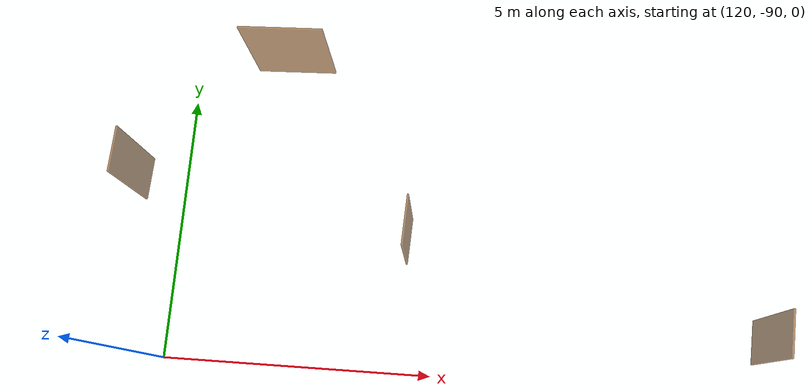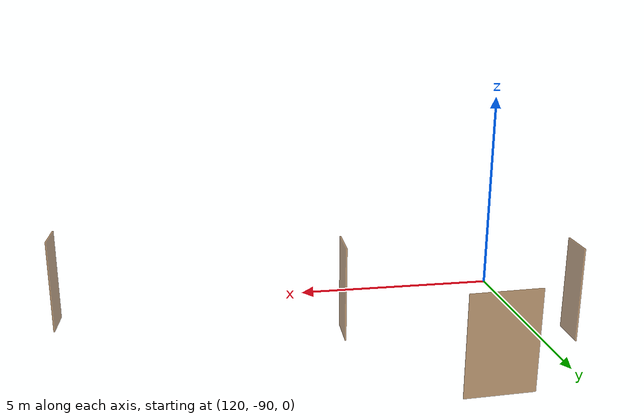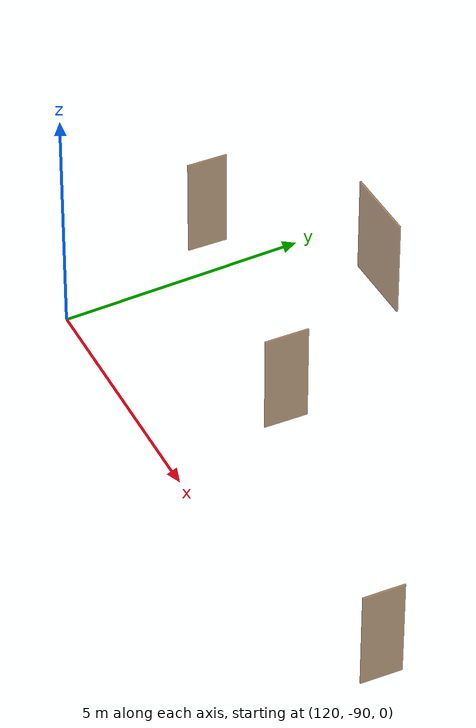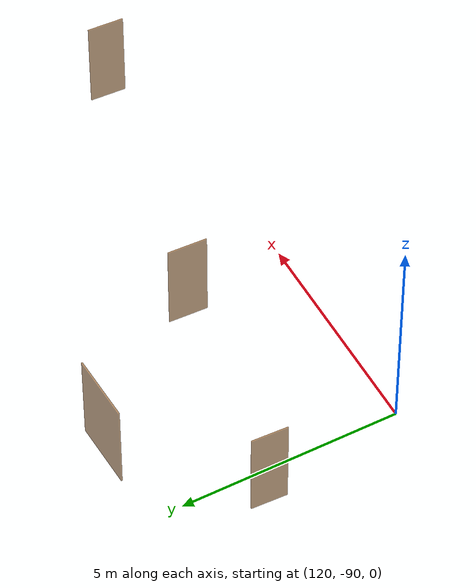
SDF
<sdf version="1.7">
 <world name="sim_world">
  <model name="puerta113">
   <pose>131.00848202828178 -88.92952259139423 0.0 0 0 -1.6130169970053267</pose>
   <link name="right">
    <pose>0 0 1.11 0 0 0</pose>
    <visual name="right_visual">
     <geometry><box><size>0.8323058361690955 0.03 2.2</size></box></geometry>
     <material>
      <ambient>0.5 0.25 0 0.6</ambient>
      <diffuse>0.5 0.25 0 0.6</diffuse>
      <pbr><metal><metalness>0.0</metalness></metal></pbr>
     </material>
    </visual>
    <collision name="right_collision">
     <geometry><box><size>0.8323058361690955 0.03 2.2</size></box></geometry>
     <surface><contact><collide_bitmask>0x02</collide_bitmask></contact></surface>
    </collision>
    <inertial>
     <mass>50.0</mass>
     <inertia><ixx>20.17041666666667</ixx><iyy>23.05305418717141</iyy><izz>2.8901375205047386</izz></inertia>
    </inertial>
   </link>
   <joint name="right_joint" type="revolute">
    <parent>world</parent>
    <child>right</child>
    <axis><xyz>0 0 1</xyz><limit><lower>0</lower><upper>1.57</upper></limit></axis>
    <pose>0.42115291808454774 0 0 0 0 0</pose>
   </joint>
   <plugin name="register_component" filename="libregister_component.so">
    <component name="Door">
     <v_max_door>0.5</v_max_door>
     <a_max_door>0.3</a_max_door>
     <a_nom_door>0.15</a_nom_door>
     <dx_min_door>0.01</dx_min_door>
     <f_max_door>500.0</f_max_door>
     <ros_interface>true</ros_interface>
     <door name="puerta113" type="SwingDoor" left_joint_name="empty_joint" right_joint_name="right_joint"/>
    </component>
   </plugin>
  </model>
  <model name="puerta114">
   <pose>124.4180386151069 -87.47750116754106 0.0 0 0 -1.610241551311159</pose>
   <link name="right">
    <pose>0 0 1.11 0 0 0</pose>
    <visual name="right_visual">
     <geometry><box><size>0.8915381152127525 0.03 2.2</size></box></geometry>
     <material>
      <ambient>0.5 0.25 0 0.6</ambient>
      <diffuse>0.5 0.25 0 0.6</diffuse>
      <pbr><metal><metalness>0.0</metalness></metal></pbr>
     </material>
    </visual>
    <collision name="right_collision">
     <geometry><box><size>0.8915381152127525 0.03 2.2</size></box></geometry>
     <surface><contact><collide_bitmask>0x02</collide_bitmask></contact></surface>
    </collision>
    <inertial>
     <mass>50.0</mass>
     <inertia><ixx>20.17041666666667</ixx><iyy>23.478500878654618</iyy><izz>3.3155842119879466</izz></inertia>
    </inertial>
   </link>
   <joint name="right_joint" type="revolute">
    <parent>world</parent>
    <child>right</child>
    <axis><xyz>0 0 1</xyz><limit><lower>0</lower><upper>1.57</upper></limit></axis>
    <pose>0.45076905760637626 0 0 0 0 0</pose>
   </joint>
   <plugin name="register_component" filename="libregister_component.so">
    <component name="Door">
     <v_max_door>0.5</v_max_door>
     <a_max_door>0.3</a_max_door>
     <a_nom_door>0.15</a_nom_door>
     <dx_min_door>0.01</dx_min_door>
     <f_max_door>500.0</f_max_door>
     <ros_interface>true</ros_interface>
     <door name="puerta114" type="SwingDoor" left_joint_name="empty_joint" right_joint_name="right_joint"/>
    </component>
   </plugin>
  </model>
  <model name="puerta165">
   <pose>121.91697625789402 -84.18819079514805 0.0 0 0 -3.102842558878548</pose>
   <link name="right">
    <pose>0 0 1.11 0 0 0</pose>
    <visual name="right_visual">
     <geometry><box><size>1.5202278643985496 0.03 2.2</size></box></geometry>
     <material>
      <ambient>0.5 0.25 0 0.6</ambient>
      <diffuse>0.5 0.25 0 0.6</diffuse>
      <pbr><metal><metalness>0.0</metalness></metal></pbr>
     </material>
    </visual>
    <collision name="right_collision">
     <geometry><box><size>1.5202278643985496 0.03 2.2</size></box></geometry>
     <surface><contact><collide_bitmask>0x02</collide_bitmask></contact></surface>
    </collision>
    <inertial>
     <mass>50.0</mass>
     <inertia><ixx>20.17041666666667</ixx><iyy>29.7962198320574</iyy><izz>9.63330316539073</izz></inertia>
    </inertial>
   </link>
   <joint name="right_joint" type="revolute">
    <parent>world</parent>
    <child>right</child>
    <axis><xyz>0 0 -1</xyz><limit><lower>0</lower><upper>1.57</upper></limit></axis>
    <pose>0.7651139321992748 0 0 0 0 0</pose>
   </joint>
   <plugin name="register_component" filename="libregister_component.so">
    <component name="Door">
     <v_max_door>0.5</v_max_door>
     <a_max_door>0.3</a_max_door>
     <a_nom_door>0.15</a_nom_door>
     <dx_min_door>0.01</dx_min_door>
     <f_max_door>500.0</f_max_door>
     <ros_interface>true</ros_interface>
     <door name="puerta165" type="SwingDoor" left_joint_name="empty_joint" right_joint_name="right_joint"/>
    </component>
   </plugin>
  </model>
  <model name="puerta170">
   <pose>119.27370529159072 -86.60035173490292 0.0 0 0 1.527974793947575</pose>
   <link name="right">
    <pose>0 0 1.11 0 0 0</pose>
    <visual name="right_visual">
     <geometry><box><size>0.8204938535896585 0.03 2.2</size></box></geometry>
     <material>
      <ambient>0.5 0.25 0 0.6</ambient>
      <diffuse>0.5 0.25 0 0.6</diffuse>
      <pbr><metal><metalness>0.0</metalness></metal></pbr>
     </material>
    </visual>
    <collision name="right_collision">
     <geometry><box><size>0.8204938535896585 0.03 2.2</size></box></geometry>
     <surface><contact><collide_bitmask>0x02</collide_bitmask></contact></surface>
    </collision>
    <inertial>
     <mass>50.0</mass>
     <inertia><ixx>20.17041666666667</ixx><iyy>22.97170901574337</iyy><izz>2.8087923490767004</izz></inertia>
    </inertial>
   </link>
   <joint name="right_joint" type="revolute">
    <parent>world</parent>
    <child>right</child>
    <axis><xyz>0 0 1</xyz><limit><lower>0</lower><upper>1.57</upper></limit></axis>
    <pose>0.4152469267948293 0 0 0 0 0</pose>
   </joint>
   <plugin name="register_component" filename="libregister_component.so">
    <component name="Door">
     <v_max_door>0.5</v_max_door>
     <a_max_door>0.3</a_max_door>
     <a_nom_door>0.15</a_nom_door>
     <dx_min_door>0.01</dx_min_door>
     <f_max_door>500.0</f_max_door>
     <ros_interface>true</ros_interface>
     <door name="puerta170" type="SwingDoor" left_joint_name="empty_joint" right_joint_name="right_joint"/>
    </component>
   </plugin>
  </model>
 </world>
</sdf>
